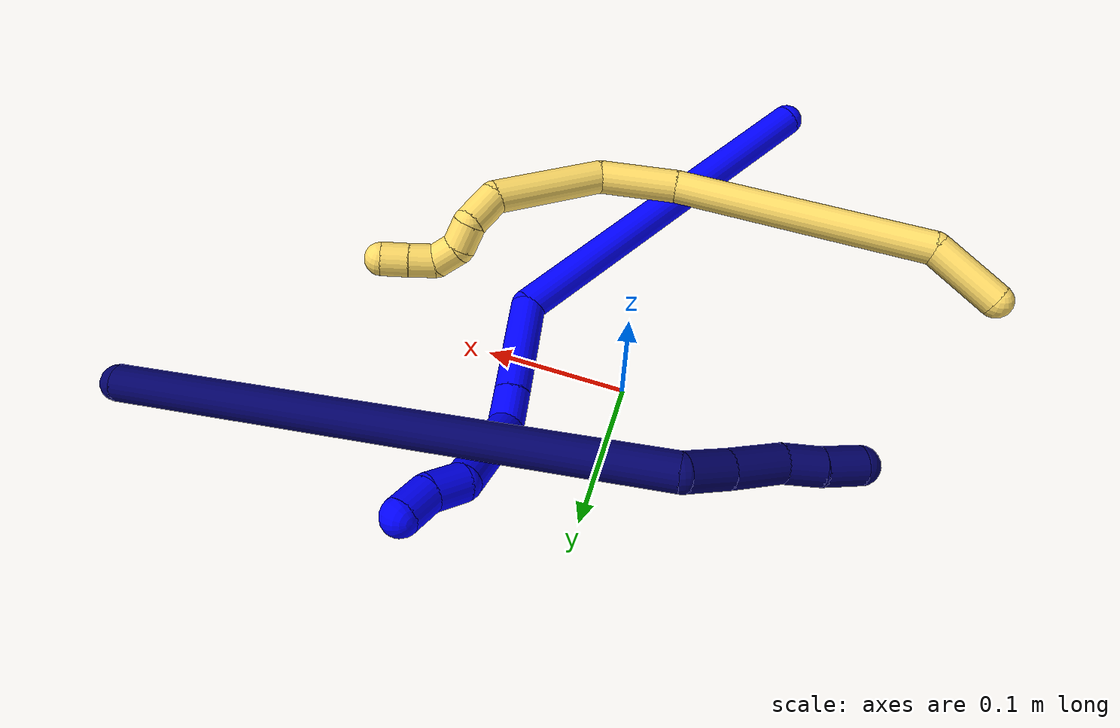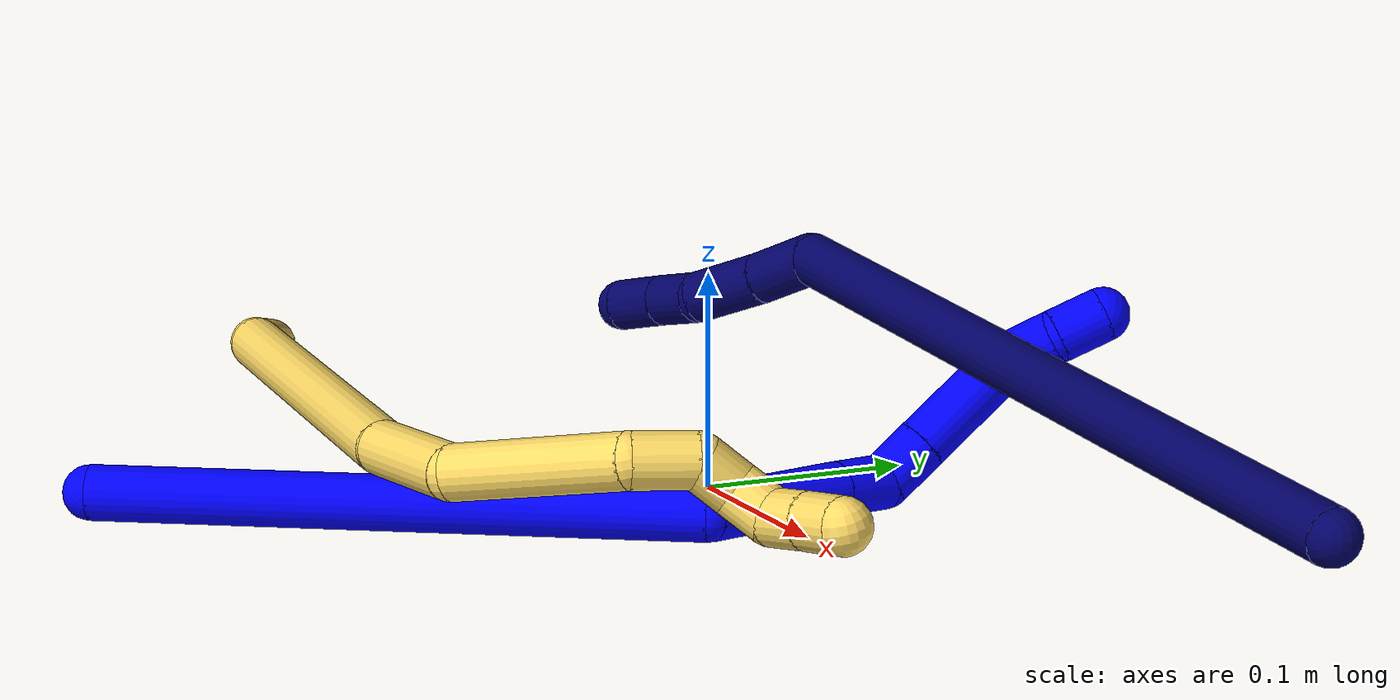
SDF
<sdf version="1.7">
 <world name="default">
  <model name="photoneo_s_sensor">
   <static>1</static>
   <pose>0 0 2 1.57079 1.57079 3.14159</pose>
   <link name="link">
    <inertial><mass>0.1</mass></inertial>
    <sensor name="sensor" type="depth">
     <update_rate>30</update_rate>
     <camera>
      <horizontal_fov>1.22</horizontal_fov>
      <image><width>1920</width><height>1200</height><format>B8G8R8</format></image>
      <clip><near>0.1</near><far>4</far></clip>
      <depth_camera><output>points</output></depth_camera>
     </camera>
     <plugin name="camera_plugin" filename="libgazebo_ros_depth_camera.so">
      <baseline>0.2</baseline>
      <alwaysOn>1</alwaysOn>
      <updateRate>0.0</updateRate>
      <cameraName>camera_ir</cameraName>
      <imageTopicName>/camera/color/image_raw</imageTopicName>
      <cameraInfoTopicName>/camera/color/camera_info</cameraInfoTopicName>
      <depthImageTopicName>/camera/depth/image_raw</depthImageTopicName>
      <depthImageCameraInfoTopicName>/camera/depth/camera_info</depthImageCameraInfoTopicName>
      <pointCloudTopicName>/camera/depth/points</pointCloudTopicName>
      <frameName>fr_optical</frameName>
      <pointCloudCutoff>0.1</pointCloudCutoff>
      <pointCloudCutoffMax>2.0</pointCloudCutoffMax>
      <distortionK1>0</distortionK1>
      <distortionK2>0</distortionK2>
      <distortionK3>0</distortionK3>
      <distortionT1>0</distortionT1>
      <distortionT2>0</distortionT2>
      <CxPrime>0</CxPrime>
      <Cx>0</Cx>
      <Cy>0</Cy>
      <focalLength>0</focalLength>
      <hackBaseline>0</hackBaseline>
     </plugin>
    </sensor>
   </link>
  </model>
  <model name="bin">
   <static>1</static>
   <link name="bottom">
    <collision name="collision-bottom">
     <pose>0 0 -0.01 0 -0 0</pose>
     <geometry><box><size>0.8 0.6 0.02</size></box></geometry>
     <surface>
      <friction><ode><mu>100</mu><mu2>100</mu2></ode></friction>
      <contact><collide_bitmask>65535</collide_bitmask></contact>
     </surface>
    </collision>
   </link>
   <link name="west_wall">
    <collision name="collision-west_wall">
     <pose>-0.41 0 0.1 0 -0 0</pose>
     <geometry><box><size>0.02 0.6 0.2</size></box></geometry>
     <surface>
      <friction><ode><mu>100</mu><mu2>100</mu2></ode></friction>
      <contact><collide_bitmask>65535</collide_bitmask></contact>
     </surface>
    </collision>
   </link>
   <link name="east_wall">
    <collision name="collision-east_wall">
     <pose>0.41 0 0.1 0 -0 0</pose>
     <geometry><box><size>0.02 0.6 0.2</size></box></geometry>
     <surface>
      <friction><ode><mu>100</mu><mu2>100</mu2></ode></friction>
      <contact><collide_bitmask>65535</collide_bitmask></contact>
     </surface>
    </collision>
   </link>
   <link name="south_wall">
    <collision name="collision-south_wall">
     <pose>0 -0.31 0.1 0 -0 0</pose>
     <geometry><box><size>0.8 0.02 0.2</size></box></geometry>
     <surface>
      <friction><ode><mu>100</mu><mu2>100</mu2></ode></friction>
      <contact><collide_bitmask>65535</collide_bitmask></contact>
     </surface>
    </collision>
   </link>
   <link name="north_wall">
    <collision name="collision-north_wall">
     <pose>0 0.31 0.1 0 -0 0</pose>
     <geometry><box><size>0.8 0.02 0.2</size></box></geometry>
     <surface>
      <friction><ode><mu>100</mu><mu2>100</mu2></ode></friction>
      <contact><collide_bitmask>65535</collide_bitmask></contact>
     </surface>
    </collision>
   </link>
  </model>
  <model name="1">
   <static>0</static>
   <link name="1">
    <collision name="collision-cylinder-e_1_1_4">
     <pose>0.057742 0.122794 -0.021496 -1.7441 0.433771 -0.512999</pose>
     <geometry><cylinder><radius>0.0125</radius><length>0.27477</length></cylinder></geometry>
     <surface>
      <friction><ode><mu>1.16</mu><mu2>1.16</mu2><slip1>0</slip1><slip2>0</slip2></ode></friction>
      <contact><ode><kp>1e+06</kp><kd>1</kd><max_vel>0</max_vel><min_depth>0.001</min_depth></ode></contact>
     </surface>
    </collision>
    <visual name="visual-cylinder-e_1_1_4">
     <pose>0.057742 0.122794 -0.021496 -1.7441 0.433771 -0.512999</pose>
     <geometry><cylinder><radius>0.0125</radius><length>0.27477</length></cylinder></geometry>
     <material><ambient>0 0 1 1</ambient></material>
    </visual>
    <collision name="collision-cylinder-e_2_4_5">
     <pose>0.117115 0.276968 -0.026891 -1.09671 0.046194 -0.028221</pose>
     <geometry><cylinder><radius>0.0125</radius><length>0.070616</length></cylinder></geometry>
     <surface>
      <friction><ode><mu>1.16</mu><mu2>1.16</mu2><slip1>0</slip1><slip2>0</slip2></ode></friction>
      <contact><ode><kp>1e+06</kp><kd>1</kd><max_vel>0</max_vel><min_depth>0.001</min_depth></ode></contact>
     </surface>
    </collision>
    <visual name="visual-cylinder-e_2_4_5">
     <pose>0.117115 0.276968 -0.026891 -1.09671 0.046194 -0.028221</pose>
     <geometry><cylinder><radius>0.0125</radius><length>0.070616</length></cylinder></geometry>
     <material><ambient>0 0 1 1</ambient></material>
    </visual>
    <collision name="collision-cylinder-e_3_5_6">
     <pose>0.11921 0.320253 -0.005001 -1.11822 0.0351 -0.021964</pose>
     <geometry><cylinder><radius>0.0125</radius><length>0.02649</length></cylinder></geometry>
     <surface>
      <friction><ode><mu>1.16</mu><mu2>1.16</mu2><slip1>0</slip1><slip2>0</slip2></ode></friction>
      <contact><ode><kp>1e+06</kp><kd>1</kd><max_vel>0</max_vel><min_depth>0.001</min_depth></ode></contact>
     </surface>
    </collision>
    <visual name="visual-cylinder-e_3_5_6">
     <pose>0.11921 0.320253 -0.005001 -1.11822 0.0351 -0.021964</pose>
     <geometry><cylinder><radius>0.0125</radius><length>0.02649</length></cylinder></geometry>
     <material><ambient>0 0 1 1</ambient></material>
    </visual>
    <collision name="collision-cylinder-e_4_6_7">
     <pose>0.127375 0.338675 0.007436 -0.775483 0.690956 -0.291898</pose>
     <geometry><cylinder><radius>0.0125</radius><length>0.024164</length></cylinder></geometry>
     <surface>
      <friction><ode><mu>1.16</mu><mu2>1.16</mu2><slip1>0</slip1><slip2>0</slip2></ode></friction>
      <contact><ode><kp>1e+06</kp><kd>1</kd><max_vel>0</max_vel><min_depth>0.001</min_depth></ode></contact>
     </surface>
    </collision>
    <visual name="visual-cylinder-e_4_6_7">
     <pose>0.127375 0.338675 0.007436 -0.775483 0.690956 -0.291898</pose>
     <geometry><cylinder><radius>0.0125</radius><length>0.024164</length></cylinder></geometry>
     <material><ambient>0 0 1 1</ambient></material>
    </visual>
    <collision name="collision-cylinder-e_5_7_8">
     <pose>0.152674 0.360296 0.029231 -0.783962 0.688529 -0.294281</pose>
     <geometry><cylinder><radius>0.0125</radius><length>0.055399</length></cylinder></geometry>
     <surface>
      <friction><ode><mu>1.16</mu><mu2>1.16</mu2><slip1>0</slip1><slip2>0</slip2></ode></friction>
      <contact><ode><kp>1e+06</kp><kd>1</kd><max_vel>0</max_vel><min_depth>0.001</min_depth></ode></contact>
     </surface>
    </collision>
    <visual name="visual-cylinder-e_5_7_8">
     <pose>0.152674 0.360296 0.029231 -0.783962 0.688529 -0.294281</pose>
     <geometry><cylinder><radius>0.0125</radius><length>0.055399</length></cylinder></geometry>
     <material><ambient>0 0 1 1</ambient></material>
    </visual>
    <collision name="collision-cylinder-e_6_8_9">
     <pose>0.180566 0.38273 0.044424 -1.56441 0.951799 -0.94661</pose>
     <geometry><cylinder><radius>0.0125</radius><length>0.025273</length></cylinder></geometry>
     <surface>
      <friction><ode><mu>1.16</mu><mu2>1.16</mu2><slip1>0</slip1><slip2>0</slip2></ode></friction>
      <contact><ode><kp>1e+06</kp><kd>1</kd><max_vel>0</max_vel><min_depth>0.001</min_depth></ode></contact>
     </surface>
    </collision>
    <visual name="visual-cylinder-e_6_8_9">
     <pose>0.180566 0.38273 0.044424 -1.56441 0.951799 -0.94661</pose>
     <geometry><cylinder><radius>0.0125</radius><length>0.025273</length></cylinder></geometry>
     <material><ambient>0 0 1 1</ambient></material>
    </visual>
    <collision name="collision-cylinder-e_7_9_2">
     <pose>0.198121 0.39868 0.0474 -1.24308 0.67344 -0.49131</pose>
     <geometry><cylinder><radius>0.0125</radius><length>0.023289</length></cylinder></geometry>
     <surface>
      <friction><ode><mu>1.16</mu><mu2>1.16</mu2><slip1>0</slip1><slip2>0</slip2></ode></friction>
      <contact><ode><kp>1e+06</kp><kd>1</kd><max_vel>0</max_vel><min_depth>0.001</min_depth></ode></contact>
     </surface>
    </collision>
    <visual name="visual-cylinder-e_7_9_2">
     <pose>0.198121 0.39868 0.0474 -1.24308 0.67344 -0.49131</pose>
     <geometry><cylinder><radius>0.0125</radius><length>0.023289</length></cylinder></geometry>
     <material><ambient>0 0 1 1</ambient></material>
    </visual>
    <collision name="collision-sphere-2">
     <pose>0.205383 0.407297 0.05033 0 -0 0</pose>
     <geometry><sphere><radius>0.0125</radius></sphere></geometry>
     <surface>
      <friction><ode><mu>1.16</mu><mu2>1.16</mu2><slip1>0</slip1><slip2>0</slip2></ode></friction>
      <contact><ode><kp>1e+06</kp><kd>1</kd><max_vel>0</max_vel><min_depth>0.001</min_depth></ode></contact>
     </surface>
    </collision>
    <visual name="visual-sphere-2">
     <pose>0.205383 0.407297 0.05033 0 -0 0</pose>
     <geometry><sphere><radius>0.0125</radius></sphere></geometry>
     <material><ambient>0 0 1 1</ambient></material>
    </visual>
    <collision name="collision-sphere-9">
     <pose>0.190858 0.390062 0.044471 0 -0 0</pose>
     <geometry><sphere><radius>0.0125</radius></sphere></geometry>
     <surface>
      <friction><ode><mu>1.16</mu><mu2>1.16</mu2><slip1>0</slip1><slip2>0</slip2></ode></friction>
      <contact><ode><kp>1e+06</kp><kd>1</kd><max_vel>0</max_vel><min_depth>0.001</min_depth></ode></contact>
     </surface>
    </collision>
    <visual name="visual-sphere-9">
     <pose>0.190858 0.390062 0.044471 0 -0 0</pose>
     <geometry><sphere><radius>0.0125</radius></sphere></geometry>
     <material><ambient>0 0 1 1</ambient></material>
    </visual>
    <collision name="collision-sphere-4">
     <pose>0.115484 0.245588 -0.042992 0 -0 0</pose>
     <geometry><sphere><radius>0.0125</radius></sphere></geometry>
     <surface>
      <friction><ode><mu>1.16</mu><mu2>1.16</mu2><slip1>0</slip1><slip2>0</slip2></ode></friction>
      <contact><ode><kp>1e+06</kp><kd>1</kd><max_vel>0</max_vel><min_depth>0.001</min_depth></ode></contact>
     </surface>
    </collision>
    <visual name="visual-sphere-4">
     <pose>0.115484 0.245588 -0.042992 0 -0 0</pose>
     <geometry><sphere><radius>0.0125</radius></sphere></geometry>
     <material><ambient>0 0 1 1</ambient></material>
    </visual>
    <collision name="collision-sphere-1">
     <geometry><sphere><radius>0.0125</radius></sphere></geometry>
     <surface>
      <friction><ode><mu>1.16</mu><mu2>1.16</mu2><slip1>0</slip1><slip2>0</slip2></ode></friction>
      <contact><ode><kp>1e+06</kp><kd>1</kd><max_vel>0</max_vel><min_depth>0.001</min_depth></ode></contact>
     </surface>
    </collision>
    <visual name="visual-sphere-1">
     <geometry><sphere><radius>0.0125</radius></sphere></geometry>
     <material><ambient>0 0 1 1</ambient></material>
    </visual>
    <collision name="collision-sphere-8">
     <pose>0.170275 0.375399 0.044377 0 -0 0</pose>
     <geometry><sphere><radius>0.0125</radius></sphere></geometry>
     <surface>
      <friction><ode><mu>1.16</mu><mu2>1.16</mu2><slip1>0</slip1><slip2>0</slip2></ode></friction>
      <contact><ode><kp>1e+06</kp><kd>1</kd><max_vel>0</max_vel><min_depth>0.001</min_depth></ode></contact>
     </surface>
    </collision>
    <visual name="visual-sphere-8">
     <pose>0.170275 0.375399 0.044377 0 -0 0</pose>
     <geometry><sphere><radius>0.0125</radius></sphere></geometry>
     <material><ambient>0 0 1 1</ambient></material>
    </visual>
    <collision name="collision-sphere-5">
     <pose>0.118745 0.308349 -0.010789 0 -0 0</pose>
     <geometry><sphere><radius>0.0125</radius></sphere></geometry>
     <surface>
      <friction><ode><mu>1.16</mu><mu2>1.16</mu2><slip1>0</slip1><slip2>0</slip2></ode></friction>
      <contact><ode><kp>1e+06</kp><kd>1</kd><max_vel>0</max_vel><min_depth>0.001</min_depth></ode></contact>
     </surface>
    </collision>
    <visual name="visual-sphere-5">
     <pose>0.118745 0.308349 -0.010789 0 -0 0</pose>
     <geometry><sphere><radius>0.0125</radius></sphere></geometry>
     <material><ambient>0 0 1 1</ambient></material>
    </visual>
    <collision name="collision-sphere-6">
     <pose>0.119675 0.332157 0.000788 0 -0 0</pose>
     <geometry><sphere><radius>0.0125</radius></sphere></geometry>
     <surface>
      <friction><ode><mu>1.16</mu><mu2>1.16</mu2><slip1>0</slip1><slip2>0</slip2></ode></friction>
      <contact><ode><kp>1e+06</kp><kd>1</kd><max_vel>0</max_vel><min_depth>0.001</min_depth></ode></contact>
     </surface>
    </collision>
    <visual name="visual-sphere-6">
     <pose>0.119675 0.332157 0.000788 0 -0 0</pose>
     <geometry><sphere><radius>0.0125</radius></sphere></geometry>
     <material><ambient>0 0 1 1</ambient></material>
    </visual>
    <collision name="collision-sphere-7">
     <pose>0.135074 0.345194 0.014085 0 -0 0</pose>
     <geometry><sphere><radius>0.0125</radius></sphere></geometry>
     <surface>
      <friction><ode><mu>1.16</mu><mu2>1.16</mu2><slip1>0</slip1><slip2>0</slip2></ode></friction>
      <contact><ode><kp>1e+06</kp><kd>1</kd><max_vel>0</max_vel><min_depth>0.001</min_depth></ode></contact>
     </surface>
    </collision>
    <visual name="visual-sphere-7">
     <pose>0.135074 0.345194 0.014085 0 -0 0</pose>
     <geometry><sphere><radius>0.0125</radius></sphere></geometry>
     <material><ambient>0 0 1 1</ambient></material>
    </visual>
    <inertial>
     <pose>0.096014 0.217766 -0.007824 0 -0 0</pose>
     <mass>0.5</mass>
     <inertia>
      <ixx>0.00066</ixx>
      <ixy>0</ixy>
      <ixz>0</ixz>
      <iyy>-0.000624</iyy>
      <iyz>0</iyz>
      <izz>-0.002342</izz>
     </inertia>
    </inertial>
   </link>
   <pose>-0.059805 -0.274001 0.012836 -0.520588 -0.937129 0.247189</pose>
  </model>
  <model name="5">
   <static>0</static>
   <link name="5">
    <collision name="collision-cylinder-e_1_1_4">
     <pose>0.024661 -0.010073 0.007331 0.941678 1.10301 0.606936</pose>
     <geometry><cylinder><radius>0.0125</radius><length>0.055259</length></cylinder></geometry>
     <surface>
      <friction><ode><mu>1.16</mu><mu2>1.16</mu2><slip1>0</slip1><slip2>0</slip2></ode></friction>
      <contact><ode><kp>1e+06</kp><kd>1</kd><max_vel>0</max_vel><min_depth>0.001</min_depth></ode></contact>
     </surface>
    </collision>
    <visual name="visual-cylinder-e_1_1_4">
     <pose>0.024661 -0.010073 0.007331 0.941678 1.10301 0.606936</pose>
     <geometry><cylinder><radius>0.0125</radius><length>0.055259</length></cylinder></geometry>
     <material><ambient>1 0.858824 0.4 1</ambient></material>
    </visual>
    <collision name="collision-cylinder-e_2_4_5">
     <pose>0.144696 -0.025109 0.005985 2.62211 1.46637 2.56777</pose>
     <geometry><cylinder><radius>0.0125</radius><length>0.191792</length></cylinder></geometry>
     <surface>
      <friction><ode><mu>1.16</mu><mu2>1.16</mu2><slip1>0</slip1><slip2>0</slip2></ode></friction>
      <contact><ode><kp>1e+06</kp><kd>1</kd><max_vel>0</max_vel><min_depth>0.001</min_depth></ode></contact>
     </surface>
    </collision>
    <visual name="visual-cylinder-e_2_4_5">
     <pose>0.144696 -0.025109 0.005985 2.62211 1.46637 2.56777</pose>
     <geometry><cylinder><radius>0.0125</radius><length>0.191792</length></cylinder></geometry>
     <material><ambient>1 0.858824 0.4 1</ambient></material>
    </visual>
    <collision name="collision-cylinder-e_3_5_6">
     <pose>0.269144 -0.025801 -0.00472 -2.01431 1.40963 -1.86347</pose>
     <geometry><cylinder><radius>0.0125</radius><length>0.058912</length></cylinder></geometry>
     <surface>
      <friction><ode><mu>1.16</mu><mu2>1.16</mu2><slip1>0</slip1><slip2>0</slip2></ode></friction>
      <contact><ode><kp>1e+06</kp><kd>1</kd><max_vel>0</max_vel><min_depth>0.001</min_depth></ode></contact>
     </surface>
    </collision>
    <visual name="visual-cylinder-e_3_5_6">
     <pose>0.269144 -0.025801 -0.00472 -2.01431 1.40963 -1.86347</pose>
     <geometry><cylinder><radius>0.0125</radius><length>0.058912</length></cylinder></geometry>
     <material><ambient>1 0.858824 0.4 1</ambient></material>
    </visual>
    <collision name="collision-cylinder-e_4_6_7">
     <pose>0.331294 0.005423 -0.007665 -1.60478 0.886721 -0.913343</pose>
     <geometry><cylinder><radius>0.0125</radius><length>0.085354</length></cylinder></geometry>
     <surface>
      <friction><ode><mu>1.16</mu><mu2>1.16</mu2><slip1>0</slip1><slip2>0</slip2></ode></friction>
      <contact><ode><kp>1e+06</kp><kd>1</kd><max_vel>0</max_vel><min_depth>0.001</min_depth></ode></contact>
     </surface>
    </collision>
    <visual name="visual-cylinder-e_4_6_7">
     <pose>0.331294 0.005423 -0.007665 -1.60478 0.886721 -0.913343</pose>
     <geometry><cylinder><radius>0.0125</radius><length>0.085354</length></cylinder></geometry>
     <material><ambient>1 0.858824 0.4 1</ambient></material>
    </visual>
    <collision name="collision-cylinder-e_5_7_8">
     <pose>0.368974 0.045391 -0.012357 -1.85316 0.32759 -0.433178</pose>
     <geometry><cylinder><radius>0.0125</radius><length>0.028623</length></cylinder></geometry>
     <surface>
      <friction><ode><mu>1.16</mu><mu2>1.16</mu2><slip1>0</slip1><slip2>0</slip2></ode></friction>
      <contact><ode><kp>1e+06</kp><kd>1</kd><max_vel>0</max_vel><min_depth>0.001</min_depth></ode></contact>
     </surface>
    </collision>
    <visual name="visual-cylinder-e_5_7_8">
     <pose>0.368974 0.045391 -0.012357 -1.85316 0.32759 -0.433178</pose>
     <geometry><cylinder><radius>0.0125</radius><length>0.028623</length></cylinder></geometry>
     <material><ambient>1 0.858824 0.4 1</ambient></material>
    </visual>
    <collision name="collision-cylinder-e_6_8_9">
     <pose>0.375454 0.064037 -0.024183 -2.53114 0.188636 -0.583362</pose>
     <geometry><cylinder><radius>0.0125</radius><length>0.020005</length></cylinder></geometry>
     <surface>
      <friction><ode><mu>1.16</mu><mu2>1.16</mu2><slip1>0</slip1><slip2>0</slip2></ode></friction>
      <contact><ode><kp>1e+06</kp><kd>1</kd><max_vel>0</max_vel><min_depth>0.001</min_depth></ode></contact>
     </surface>
    </collision>
    <visual name="visual-cylinder-e_6_8_9">
     <pose>0.375454 0.064037 -0.024183 -2.53114 0.188636 -0.583362</pose>
     <geometry><cylinder><radius>0.0125</radius><length>0.020005</length></cylinder></geometry>
     <material><ambient>1 0.858824 0.4 1</ambient></material>
    </visual>
    <collision name="collision-cylinder-e_7_9_10">
     <pose>0.384243 0.073302 -0.038513 -2.61709 0.761259 -1.95982</pose>
     <geometry><cylinder><radius>0.0125</radius><length>0.020044</length></cylinder></geometry>
     <surface>
      <friction><ode><mu>1.16</mu><mu2>1.16</mu2><slip1>0</slip1><slip2>0</slip2></ode></friction>
      <contact><ode><kp>1e+06</kp><kd>1</kd><max_vel>0</max_vel><min_depth>0.001</min_depth></ode></contact>
     </surface>
    </collision>
    <visual name="visual-cylinder-e_7_9_10">
     <pose>0.384243 0.073302 -0.038513 -2.61709 0.761259 -1.95982</pose>
     <geometry><cylinder><radius>0.0125</radius><length>0.020044</length></cylinder></geometry>
     <material><ambient>1 0.858824 0.4 1</ambient></material>
    </visual>
    <collision name="collision-cylinder-e_8_10_11">
     <pose>0.400552 0.080356 -0.045031 -1.64009 1.22088 -1.28676</pose>
     <geometry><cylinder><radius>0.0125</radius><length>0.020003</length></cylinder></geometry>
     <surface>
      <friction><ode><mu>1.16</mu><mu2>1.16</mu2><slip1>0</slip1><slip2>0</slip2></ode></friction>
      <contact><ode><kp>1e+06</kp><kd>1</kd><max_vel>0</max_vel><min_depth>0.001</min_depth></ode></contact>
     </surface>
    </collision>
    <visual name="visual-cylinder-e_8_10_11">
     <pose>0.400552 0.080356 -0.045031 -1.64009 1.22088 -1.28676</pose>
     <geometry><cylinder><radius>0.0125</radius><length>0.020003</length></cylinder></geometry>
     <material><ambient>1 0.858824 0.4 1</ambient></material>
    </visual>
    <collision name="collision-cylinder-e_9_11_2">
     <pose>0.41949 0.086768 -0.045542 -1.66201 1.26587 -1.35408</pose>
     <geometry><cylinder><radius>0.0125</radius><length>0.020008</length></cylinder></geometry>
     <surface>
      <friction><ode><mu>1.16</mu><mu2>1.16</mu2><slip1>0</slip1><slip2>0</slip2></ode></friction>
      <contact><ode><kp>1e+06</kp><kd>1</kd><max_vel>0</max_vel><min_depth>0.001</min_depth></ode></contact>
     </surface>
    </collision>
    <visual name="visual-cylinder-e_9_11_2">
     <pose>0.41949 0.086768 -0.045542 -1.66201 1.26587 -1.35408</pose>
     <geometry><cylinder><radius>0.0125</radius><length>0.020008</length></cylinder></geometry>
     <material><ambient>1 0.858824 0.4 1</ambient></material>
    </visual>
    <collision name="collision-sphere-2">
     <pose>0.429032 0.089759 -0.045815 0 -0 0</pose>
     <geometry><sphere><radius>0.0125</radius></sphere></geometry>
     <surface>
      <friction><ode><mu>1.16</mu><mu2>1.16</mu2><slip1>0</slip1><slip2>0</slip2></ode></friction>
      <contact><ode><kp>1e+06</kp><kd>1</kd><max_vel>0</max_vel><min_depth>0.001</min_depth></ode></contact>
     </surface>
    </collision>
    <visual name="visual-sphere-2">
     <pose>0.429032 0.089759 -0.045815 0 -0 0</pose>
     <geometry><sphere><radius>0.0125</radius></sphere></geometry>
     <material><ambient>1 0.858824 0.4 1</ambient></material>
    </visual>
    <collision name="collision-sphere-11">
     <pose>0.409948 0.083777 -0.045268 0 -0 0</pose>
     <geometry><sphere><radius>0.0125</radius></sphere></geometry>
     <surface>
      <friction><ode><mu>1.16</mu><mu2>1.16</mu2><slip1>0</slip1><slip2>0</slip2></ode></friction>
      <contact><ode><kp>1e+06</kp><kd>1</kd><max_vel>0</max_vel><min_depth>0.001</min_depth></ode></contact>
     </surface>
    </collision>
    <visual name="visual-sphere-11">
     <pose>0.409948 0.083777 -0.045268 0 -0 0</pose>
     <geometry><sphere><radius>0.0125</radius></sphere></geometry>
     <material><ambient>1 0.858824 0.4 1</ambient></material>
    </visual>
    <collision name="collision-sphere-10">
     <pose>0.391156 0.076936 -0.044793 0 -0 0</pose>
     <geometry><sphere><radius>0.0125</radius></sphere></geometry>
     <surface>
      <friction><ode><mu>1.16</mu><mu2>1.16</mu2><slip1>0</slip1><slip2>0</slip2></ode></friction>
      <contact><ode><kp>1e+06</kp><kd>1</kd><max_vel>0</max_vel><min_depth>0.001</min_depth></ode></contact>
     </surface>
    </collision>
    <visual name="visual-sphere-10">
     <pose>0.391156 0.076936 -0.044793 0 -0 0</pose>
     <geometry><sphere><radius>0.0125</radius></sphere></geometry>
     <material><ambient>1 0.858824 0.4 1</ambient></material>
    </visual>
    <collision name="collision-sphere-9">
     <pose>0.37733 0.069669 -0.032233 0 -0 0</pose>
     <geometry><sphere><radius>0.0125</radius></sphere></geometry>
     <surface>
      <friction><ode><mu>1.16</mu><mu2>1.16</mu2><slip1>0</slip1><slip2>0</slip2></ode></friction>
      <contact><ode><kp>1e+06</kp><kd>1</kd><max_vel>0</max_vel><min_depth>0.001</min_depth></ode></contact>
     </surface>
    </collision>
    <visual name="visual-sphere-9">
     <pose>0.37733 0.069669 -0.032233 0 -0 0</pose>
     <geometry><sphere><radius>0.0125</radius></sphere></geometry>
     <material><ambient>1 0.858824 0.4 1</ambient></material>
    </visual>
    <collision name="collision-sphere-4">
     <pose>0.049323 -0.020146 0.014662 0 -0 0</pose>
     <geometry><sphere><radius>0.0125</radius></sphere></geometry>
     <surface>
      <friction><ode><mu>1.16</mu><mu2>1.16</mu2><slip1>0</slip1><slip2>0</slip2></ode></friction>
      <contact><ode><kp>1e+06</kp><kd>1</kd><max_vel>0</max_vel><min_depth>0.001</min_depth></ode></contact>
     </surface>
    </collision>
    <visual name="visual-sphere-4">
     <pose>0.049323 -0.020146 0.014662 0 -0 0</pose>
     <geometry><sphere><radius>0.0125</radius></sphere></geometry>
     <material><ambient>1 0.858824 0.4 1</ambient></material>
    </visual>
    <collision name="collision-sphere-1">
     <geometry><sphere><radius>0.0125</radius></sphere></geometry>
     <surface>
      <friction><ode><mu>1.16</mu><mu2>1.16</mu2><slip1>0</slip1><slip2>0</slip2></ode></friction>
      <contact><ode><kp>1e+06</kp><kd>1</kd><max_vel>0</max_vel><min_depth>0.001</min_depth></ode></contact>
     </surface>
    </collision>
    <visual name="visual-sphere-1">
     <geometry><sphere><radius>0.0125</radius></sphere></geometry>
     <material><ambient>1 0.858824 0.4 1</ambient></material>
    </visual>
    <collision name="collision-sphere-8">
     <pose>0.373578 0.058405 -0.016132 0 -0 0</pose>
     <geometry><sphere><radius>0.0125</radius></sphere></geometry>
     <surface>
      <friction><ode><mu>1.16</mu><mu2>1.16</mu2><slip1>0</slip1><slip2>0</slip2></ode></friction>
      <contact><ode><kp>1e+06</kp><kd>1</kd><max_vel>0</max_vel><min_depth>0.001</min_depth></ode></contact>
     </surface>
    </collision>
    <visual name="visual-sphere-8">
     <pose>0.373578 0.058405 -0.016132 0 -0 0</pose>
     <geometry><sphere><radius>0.0125</radius></sphere></geometry>
     <material><ambient>1 0.858824 0.4 1</ambient></material>
    </visual>
    <collision name="collision-sphere-5">
     <pose>0.24007 -0.030071 -0.002692 0 -0 0</pose>
     <geometry><sphere><radius>0.0125</radius></sphere></geometry>
     <surface>
      <friction><ode><mu>1.16</mu><mu2>1.16</mu2><slip1>0</slip1><slip2>0</slip2></ode></friction>
      <contact><ode><kp>1e+06</kp><kd>1</kd><max_vel>0</max_vel><min_depth>0.001</min_depth></ode></contact>
     </surface>
    </collision>
    <visual name="visual-sphere-5">
     <pose>0.24007 -0.030071 -0.002692 0 -0 0</pose>
     <geometry><sphere><radius>0.0125</radius></sphere></geometry>
     <material><ambient>1 0.858824 0.4 1</ambient></material>
    </visual>
    <collision name="collision-sphere-6">
     <pose>0.298219 -0.021532 -0.006748 0 -0 0</pose>
     <geometry><sphere><radius>0.0125</radius></sphere></geometry>
     <surface>
      <friction><ode><mu>1.16</mu><mu2>1.16</mu2><slip1>0</slip1><slip2>0</slip2></ode></friction>
      <contact><ode><kp>1e+06</kp><kd>1</kd><max_vel>0</max_vel><min_depth>0.001</min_depth></ode></contact>
     </surface>
    </collision>
    <visual name="visual-sphere-6">
     <pose>0.298219 -0.021532 -0.006748 0 -0 0</pose>
     <geometry><sphere><radius>0.0125</radius></sphere></geometry>
     <material><ambient>1 0.858824 0.4 1</ambient></material>
    </visual>
    <collision name="collision-sphere-7">
     <pose>0.364369 0.032377 -0.008581 0 -0 0</pose>
     <geometry><sphere><radius>0.0125</radius></sphere></geometry>
     <surface>
      <friction><ode><mu>1.16</mu><mu2>1.16</mu2><slip1>0</slip1><slip2>0</slip2></ode></friction>
      <contact><ode><kp>1e+06</kp><kd>1</kd><max_vel>0</max_vel><min_depth>0.001</min_depth></ode></contact>
     </surface>
    </collision>
    <visual name="visual-sphere-7">
     <pose>0.364369 0.032377 -0.008581 0 -0 0</pose>
     <geometry><sphere><radius>0.0125</radius></sphere></geometry>
     <material><ambient>1 0.858824 0.4 1</ambient></material>
    </visual>
    <inertial>
     <pose>0.230853 0.001927 -0.005601 0 -0 0</pose>
     <mass>0.5</mass>
     <inertia>
      <ixx>1.5e-05</ixx>
      <ixy>0</ixy>
      <ixz>0</ixz>
      <iyy>0.000672</iyy>
      <iyz>0</iyz>
      <izz>-0.000683</izz>
     </inertia>
    </inertial>
   </link>
   <pose>-0.234221 -0.133672 0.035161 0.243482 -0.045068 0.006227</pose>
  </model>
  <model name="7">
   <static>0</static>
   <link name="7">
    <collision name="collision-cylinder-e_1_1_4">
     <pose>-0.178033 0.033203 -0.052505 -2.5777 -1.23507 2.36706</pose>
     <geometry><cylinder><radius>0.0125</radius><length>0.377121</length></cylinder></geometry>
     <surface>
      <friction><ode><mu>1.16</mu><mu2>1.16</mu2><slip1>0</slip1><slip2>0</slip2></ode></friction>
      <contact><ode><kp>1e+06</kp><kd>1</kd><max_vel>0</max_vel><min_depth>0.001</min_depth></ode></contact>
     </surface>
    </collision>
    <visual name="visual-cylinder-e_1_1_4">
     <pose>-0.178033 0.033203 -0.052505 -2.5777 -1.23507 2.36706</pose>
     <geometry><cylinder><radius>0.0125</radius><length>0.377121</length></cylinder></geometry>
     <material><ambient>0.003922 0 0.403922 1</ambient></material>
    </visual>
    <collision name="collision-cylinder-e_2_4_5">
     <pose>-0.37044 0.060534 -0.102924 1.22938 -1.16167 -0.867788</pose>
     <geometry><cylinder><radius>0.0125</radius><length>0.031335</length></cylinder></geometry>
     <surface>
      <friction><ode><mu>1.16</mu><mu2>1.16</mu2><slip1>0</slip1><slip2>0</slip2></ode></friction>
      <contact><ode><kp>1e+06</kp><kd>1</kd><max_vel>0</max_vel><min_depth>0.001</min_depth></ode></contact>
     </surface>
    </collision>
    <visual name="visual-cylinder-e_2_4_5">
     <pose>-0.37044 0.060534 -0.102924 1.22938 -1.16167 -0.867788</pose>
     <geometry><cylinder><radius>0.0125</radius><length>0.031335</length></cylinder></geometry>
     <material><ambient>0.003922 0 0.403922 1</ambient></material>
    </visual>
    <collision name="collision-cylinder-e_3_5_6">
     <pose>-0.403026 0.048384 -0.097824 1.12322 -1.20561 -0.817341</pose>
     <geometry><cylinder><radius>0.0125</radius><length>0.038993</length></cylinder></geometry>
     <surface>
      <friction><ode><mu>1.16</mu><mu2>1.16</mu2><slip1>0</slip1><slip2>0</slip2></ode></friction>
      <contact><ode><kp>1e+06</kp><kd>1</kd><max_vel>0</max_vel><min_depth>0.001</min_depth></ode></contact>
     </surface>
    </collision>
    <visual name="visual-cylinder-e_3_5_6">
     <pose>-0.403026 0.048384 -0.097824 1.12322 -1.20561 -0.817341</pose>
     <geometry><cylinder><radius>0.0125</radius><length>0.038993</length></cylinder></geometry>
     <material><ambient>0.003922 0 0.403922 1</ambient></material>
    </visual>
    <collision name="collision-cylinder-e_4_6_7">
     <pose>-0.433898 0.040011 -0.095972 2.07673 -1.38371 -1.9052</pose>
     <geometry><cylinder><radius>0.0125</radius><length>0.025773</length></cylinder></geometry>
     <surface>
      <friction><ode><mu>1.16</mu><mu2>1.16</mu2><slip1>0</slip1><slip2>0</slip2></ode></friction>
      <contact><ode><kp>1e+06</kp><kd>1</kd><max_vel>0</max_vel><min_depth>0.001</min_depth></ode></contact>
     </surface>
    </collision>
    <visual name="visual-cylinder-e_4_6_7">
     <pose>-0.433898 0.040011 -0.095972 2.07673 -1.38371 -1.9052</pose>
     <geometry><cylinder><radius>0.0125</radius><length>0.025773</length></cylinder></geometry>
     <material><ambient>0.003922 0 0.403922 1</ambient></material>
    </visual>
    <collision name="collision-cylinder-e_5_7_2">
     <pose>-0.459711 0.035472 -0.096545 1.33428 -1.38207 -1.15473</pose>
     <geometry><cylinder><radius>0.0125</radius><length>0.026778</length></cylinder></geometry>
     <surface>
      <friction><ode><mu>1.16</mu><mu2>1.16</mu2><slip1>0</slip1><slip2>0</slip2></ode></friction>
      <contact><ode><kp>1e+06</kp><kd>1</kd><max_vel>0</max_vel><min_depth>0.001</min_depth></ode></contact>
     </surface>
    </collision>
    <visual name="visual-cylinder-e_5_7_2">
     <pose>-0.459711 0.035472 -0.096545 1.33428 -1.38207 -1.15473</pose>
     <geometry><cylinder><radius>0.0125</radius><length>0.026778</length></cylinder></geometry>
     <material><ambient>0.003922 0 0.403922 1</ambient></material>
    </visual>
    <collision name="collision-sphere-2">
     <pose>-0.472863 0.03303 -0.095956 0 -0 0</pose>
     <geometry><sphere><radius>0.0125</radius></sphere></geometry>
     <surface>
      <friction><ode><mu>1.16</mu><mu2>1.16</mu2><slip1>0</slip1><slip2>0</slip2></ode></friction>
      <contact><ode><kp>1e+06</kp><kd>1</kd><max_vel>0</max_vel><min_depth>0.001</min_depth></ode></contact>
     </surface>
    </collision>
    <visual name="visual-sphere-2">
     <pose>-0.472863 0.03303 -0.095956 0 -0 0</pose>
     <geometry><sphere><radius>0.0125</radius></sphere></geometry>
     <material><ambient>0.003922 0 0.403922 1</ambient></material>
    </visual>
    <collision name="collision-sphere-7">
     <pose>-0.44656 0.037914 -0.097134 0 -0 0</pose>
     <geometry><sphere><radius>0.0125</radius></sphere></geometry>
     <surface>
      <friction><ode><mu>1.16</mu><mu2>1.16</mu2><slip1>0</slip1><slip2>0</slip2></ode></friction>
      <contact><ode><kp>1e+06</kp><kd>1</kd><max_vel>0</max_vel><min_depth>0.001</min_depth></ode></contact>
     </surface>
    </collision>
    <visual name="visual-sphere-7">
     <pose>-0.44656 0.037914 -0.097134 0 -0 0</pose>
     <geometry><sphere><radius>0.0125</radius></sphere></geometry>
     <material><ambient>0.003922 0 0.403922 1</ambient></material>
    </visual>
    <collision name="collision-sphere-6">
     <pose>-0.421237 0.042107 -0.094811 0 -0 0</pose>
     <geometry><sphere><radius>0.0125</radius></sphere></geometry>
     <surface>
      <friction><ode><mu>1.16</mu><mu2>1.16</mu2><slip1>0</slip1><slip2>0</slip2></ode></friction>
      <contact><ode><kp>1e+06</kp><kd>1</kd><max_vel>0</max_vel><min_depth>0.001</min_depth></ode></contact>
     </surface>
    </collision>
    <visual name="visual-sphere-6">
     <pose>-0.421237 0.042107 -0.094811 0 -0 0</pose>
     <geometry><sphere><radius>0.0125</radius></sphere></geometry>
     <material><ambient>0.003922 0 0.403922 1</ambient></material>
    </visual>
    <collision name="collision-sphere-5">
     <pose>-0.384815 0.054661 -0.100837 0 -0 0</pose>
     <geometry><sphere><radius>0.0125</radius></sphere></geometry>
     <surface>
      <friction><ode><mu>1.16</mu><mu2>1.16</mu2><slip1>0</slip1><slip2>0</slip2></ode></friction>
      <contact><ode><kp>1e+06</kp><kd>1</kd><max_vel>0</max_vel><min_depth>0.001</min_depth></ode></contact>
     </surface>
    </collision>
    <visual name="visual-sphere-5">
     <pose>-0.384815 0.054661 -0.100837 0 -0 0</pose>
     <geometry><sphere><radius>0.0125</radius></sphere></geometry>
     <material><ambient>0.003922 0 0.403922 1</ambient></material>
    </visual>
    <collision name="collision-sphere-1">
     <geometry><sphere><radius>0.0125</radius></sphere></geometry>
     <surface>
      <friction><ode><mu>1.16</mu><mu2>1.16</mu2><slip1>0</slip1><slip2>0</slip2></ode></friction>
      <contact><ode><kp>1e+06</kp><kd>1</kd><max_vel>0</max_vel><min_depth>0.001</min_depth></ode></contact>
     </surface>
    </collision>
    <visual name="visual-sphere-1">
     <geometry><sphere><radius>0.0125</radius></sphere></geometry>
     <material><ambient>0.003922 0 0.403922 1</ambient></material>
    </visual>
    <collision name="collision-sphere-4">
     <pose>-0.356066 0.066407 -0.105011 0 -0 0</pose>
     <geometry><sphere><radius>0.0125</radius></sphere></geometry>
     <surface>
      <friction><ode><mu>1.16</mu><mu2>1.16</mu2><slip1>0</slip1><slip2>0</slip2></ode></friction>
      <contact><ode><kp>1e+06</kp><kd>1</kd><max_vel>0</max_vel><min_depth>0.001</min_depth></ode></contact>
     </surface>
    </collision>
    <visual name="visual-sphere-4">
     <pose>-0.356066 0.066407 -0.105011 0 -0 0</pose>
     <geometry><sphere><radius>0.0125</radius></sphere></geometry>
     <material><ambient>0.003922 0 0.403922 1</ambient></material>
    </visual>
    <inertial>
     <pose>-0.235912 0.036572 -0.063798 0 -0 0</pose>
     <mass>0.5</mass>
     <inertia>
      <ixx>-6.1e-05</ixx>
      <ixy>0</ixy>
      <ixz>0</ixz>
      <iyy>0.005338</iyy>
      <iyz>0</iyz>
      <izz>0.003456</izz>
     </inertia>
    </inertial>
   </link>
   <pose>0.315991 0.116722 0.040003 1.52824 -0.029068 0.386718</pose>
  </model>
 </world>
</sdf>
